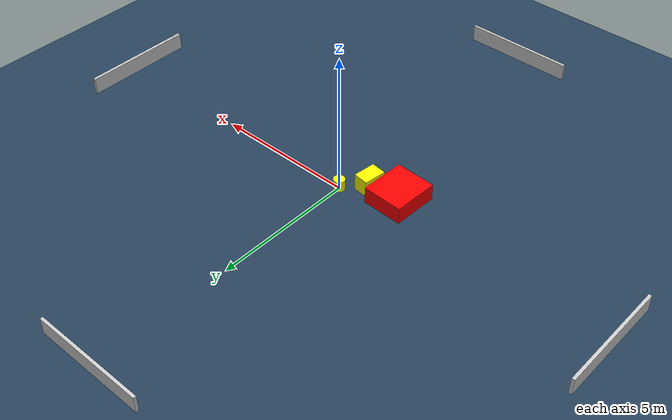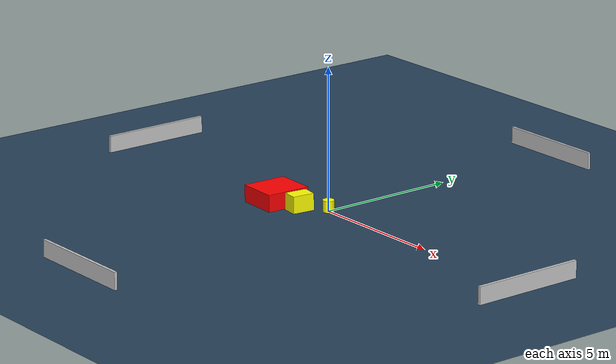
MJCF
<?xml version="1.0" ?>
<mujoco model="generated_environment">
  <option timestep="0.01" integrator="RK4" cone="elliptic"/>
  <default>
    <geom density="1"/>
  </default>
  <asset>
    <texture builtin="gradient" height="3072" name="skybox" rgb1="0.3 0.5 0.7" rgb2="0 0 0" type="skybox" width="512"/>
    <texture builtin="checker" height="300" name="groundplane" rgb1="0.2 0.3 0.4" rgb2="0.1 0.2 0.3" type="2d" width="300"/>
    <material name="groundplane" reflectance="0.2" texrepeat="5 5" texture="groundplane"/>
  </asset>
  <worldbody>
    <light dir="0 0 -1" directional="true" pos="0 0 1.5"/>
    <geom condim="3" friction="0.5 0.005 0.001" material="groundplane" name="floor" pos="0 0 0" size="0 0 0.05" type="plane"/>
    <body name="walls">
      <geom name="wall_1" condim="4" pos="-10.0 0.0 0.3" rgba="0.800000011920929 0.800000011920929 0.800000011920929 1.0" size="0.05 2.0 0.3" type="box"/>
      <geom name="wall_2" condim="4" pos="10.0 0.0 0.3" rgba="0.800000011920929 0.800000011920929 0.800000011920929 1.0" size="0.05 2.0 0.3" type="box"/>
      <geom name="wall_3" condim="4" pos="0.0 -10.0 0.3" rgba="0.800000011920929 0.800000011920929 0.800000011920929 1.0" size="2.0 0.05 0.3" type="box"/>
      <geom name="wall_4" condim="4" pos="0.0 10.0 0.3" rgba="0.800000011920929 0.800000011920929 0.800000011920929 1.0" size="2.0 0.05 0.3" type="box"/>
    </body>
    <body name="robot">
      <joint name="joint_x" type="slide" pos="0 0 0" axis="1 0 0"/>
      <joint name="joint_y" type="slide" pos="0 0 0" axis="0 1 0"/>
      <geom name="robot" type="cylinder" pos="0.0 0.0 0.2" size="0.2 0.2 0.0" mass="5.0" friction="1.0 0.005 0.0001" condim="4" rgba="1.0 1.0 0.0 1.0"/>
    </body>
    <body name="obstacle_1_movable">
      <geom name="obstacle_1_movable" condim="4" pos="-0.7019477974646942 -0.6802621833687786 0.3" euler="0 0 263.5561271392027" friction="0.0 0.005 0.001" rgba="1.0 1.0 0.0 1.0" size="0.3971629717472742 0.26775639770427856 0.3" type="box" mass="0.1"/>
      <joint type="free"/>
    </body>
    <body name="obstacle_2_static">
      <geom name="obstacle_2_static" condim="4" pos="-1.7991226679745835 -0.8195872515865407 0.3" euler="0 0 267.7329328697227" friction="0.0 0.005 0.001" rgba="1.0 0.0 0.0 1.0" size="0.7992769763063374 0.7189535623923373 0.3" type="box"/>
    </body>
  </worldbody>
  <actuator>
    <motor name="actuator_x" joint="joint_x" gear="1" ctrlrange="-1 1"/>
    <motor name="actuator_y" joint="joint_y" gear="1" ctrlrange="-1 1"/>
  </actuator>
</mujoco>
